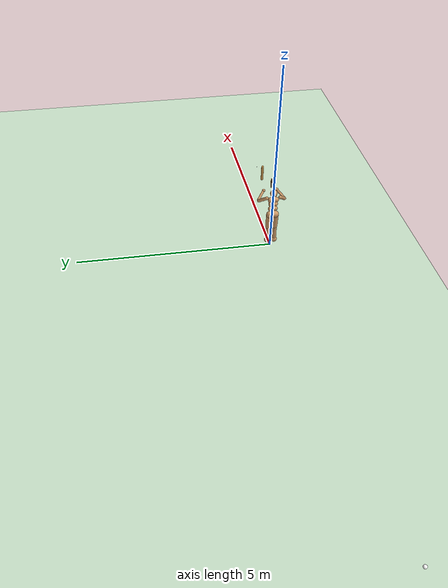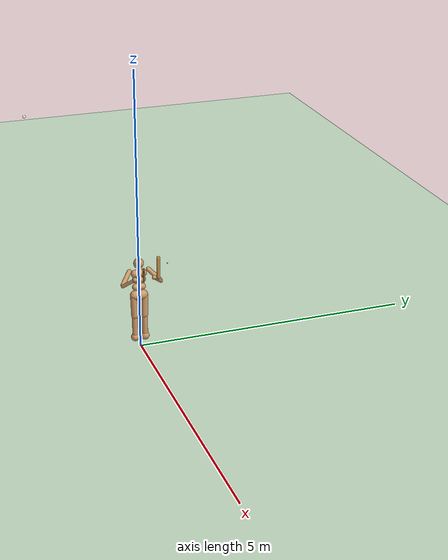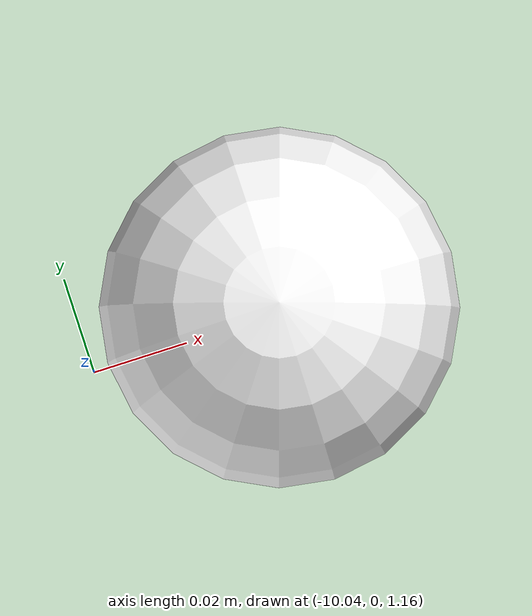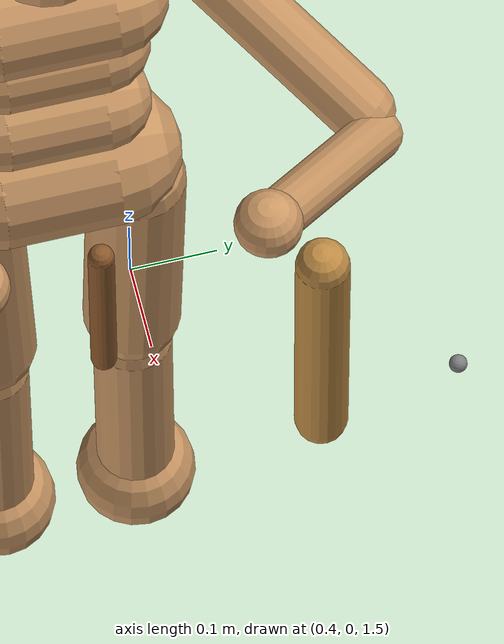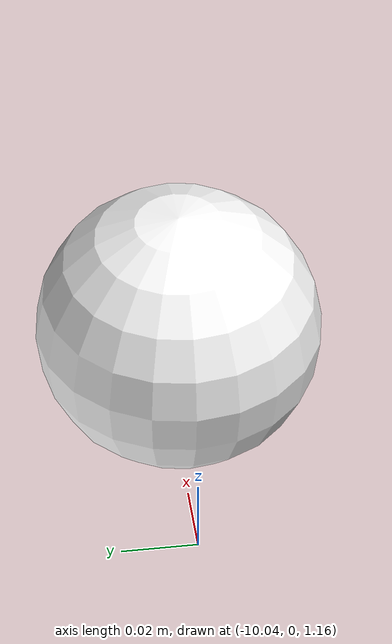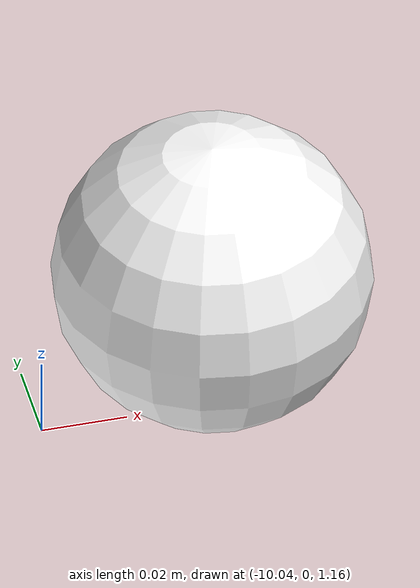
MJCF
<mujoco model="batting_humanoid">
    <compiler angle="degree" inertiafromgeom="true"/>
    <default>
        <joint armature="1" damping="1" limited="true"/>
        <geom conaffinity="1" condim="1" contype="1" margin="0.001" material="geom" rgba="0.8 0.6 .4 1"/>
        <motor ctrllimited="true" ctrlrange="-1.0 1.0"/>
    </default>
    <option integrator="RK4" iterations="50" solver="PGS" timestep="0.002">
        <!-- reduced timestep from 0.003 to 0.002 to prevent ball tunneling -->
    </option>
    <size nkey="5" nuser_geom="1"/>
    <visual>
        <map fogend="5" fogstart="3"/>
    </visual>
    <asset>
        <texture builtin="gradient" height="100" rgb1=".4 .5 .6" rgb2="0 0 0" type="skybox" width="100"/>
        <texture builtin="flat" height="1278" mark="cross" markrgb="1 1 1" name="texgeom" random="0.01" rgb1="0.8 0.6 0.4" rgb2="0.8 0.6 0.4" type="cube" width="127"/>
        <texture builtin="checker" height="100" name="texplane" rgb1="0 0 0" rgb2="0.8 0.8 0.8" type="2d" width="100"/>
        <material name="MatPlane" reflectance="0.5" shininess="1" specular="1" texrepeat="60 60" texture="texplane"/>
        <material name="geom" texture="texgeom" texuniform="true"/>
    </asset>
    <worldbody>
        <light cutoff="100" diffuse="1 1 1" dir="-0 0 -1.3" directional="true" exponent="1" pos="0 0 1.3" specular=".1 .1 .1"/>
        <geom condim="3" friction="1 .1 .1" material="MatPlane" name="floor" pos="0 0 0" rgba="0.8 0.9 0.8 1" size="20 20 0.125" type="plane"/>
        <body name="torso" pos="0 0 1.4">
            <camera name="track" mode="trackcom" pos="0 -4 0" xyaxes="1 0 0 0 0 1"/>
            <joint armature="0" damping="0" limited="false" name="root" pos="0 0 0" stiffness="0" type="free"/>
            <geom fromto="0 -.07 0 0 .07 0" name="torso1" size="0.07" type="capsule"/>
            <geom name="head" pos="0 0 .19" size=".09" type="sphere" user="258"/>
            <geom fromto="-.01 -.06 -.12 -.01 .06 -.12" name="uwaist" size="0.06" type="capsule"/>
            <body name="lwaist" pos="-.01 0 -0.260" quat="1.000 0 -0.002 0">
                <geom fromto="0 -.06 0 0 .06 0" name="lwaist" size="0.06" type="capsule"/>
                <joint armature="0.02" axis="0 0 1" damping="5" name="abdomen_z" pos="0 0 0.065" range="-45 45" stiffness="20" type="hinge"/>
                <joint armature="0.02" axis="0 1 0" damping="5" name="abdomen_y" pos="0 0 0.065" range="-75 30" stiffness="10" type="hinge"/>
                <body name="pelvis" pos="0 0 -0.165" quat="1.000 0 -0.002 0">
                    <joint armature="0.02" axis="1 0 0" damping="5" name="abdomen_x" pos="0 0 0.1" range="-35 35" stiffness="10" type="hinge"/>
                    <geom fromto="-.02 -.07 0 -.02 .07 0" name="butt" size="0.09" type="capsule"/>
                    <body name="right_thigh" pos="0 -0.1 -0.04">
                        <joint armature="0.01" axis="1 0 0" damping="5" name="right_hip_x" pos="0 0 0" range="-25 5" stiffness="10" type="hinge"/>
                        <joint armature="0.01" axis="0 0 1" damping="5" name="right_hip_z" pos="0 0 0" range="-60 35" stiffness="10" type="hinge"/>
                        <joint armature="0.0080" axis="0 1 0" damping="5" name="right_hip_y" pos="0 0 0" range="-110 20" stiffness="20" type="hinge"/>
                        <geom fromto="0 0 0 0 0.01 -.34" name="right_thigh1" size="0.06" type="capsule"/>
                        <body name="right_shin" pos="0 0.01 -0.403">
                            <joint armature="0.0060" axis="0 -1 0" name="right_knee" pos="0 0 .02" range="-160 -2" type="hinge"/>
                            <geom fromto="0 0 0 0 0 -.3" name="right_shin1" size="0.049" type="capsule"/>
                            <body name="right_foot" pos="0 0 -0.45">
                                <geom name="right_foot" pos="0 0 0.1" size="0.075" type="sphere" user="0"/>
                            </body>
                        </body>
                    </body>
                    <body name="left_thigh" pos="0 0.1 -0.04">
                        <joint armature="0.01" axis="-1 0 0" damping="5" name="left_hip_x" pos="0 0 0" range="-25 5" stiffness="10" type="hinge"/>
                        <joint armature="0.01" axis="0 0 -1" damping="5" name="left_hip_z" pos="0 0 0" range="-60 35" stiffness="10" type="hinge"/>
                        <joint armature="0.01" axis="0 1 0" damping="5" name="left_hip_y" pos="0 0 0" range="-110 20" stiffness="20" type="hinge"/>
                        <geom fromto="0 0 0 0 -0.01 -.34" name="left_thigh1" size="0.06" type="capsule"/>
                        <body name="left_shin" pos="0 -0.01 -0.403">
                            <joint armature="0.0060" axis="0 -1 0" name="left_knee" pos="0 0 .02" range="-160 -2" stiffness="1" type="hinge"/>
                            <geom fromto="0 0 0 0 0 -.3" name="left_shin1" size="0.049" type="capsule"/>
                            <body name="left_foot" pos="0 0 -0.45">
                                <geom name="left_foot" type="sphere" size="0.075" pos="0 0 0.1" user="0"/>
                            </body>
                        </body>
                    </body>
                </body>
            </body>
            <body name="right_upper_arm" pos="0 -0.17 0.06">
                <joint armature="0.0068" axis="2 1 1" name="right_shoulder1" pos="0 0 0" range="-85 60" stiffness="1" type="hinge"/>
                <joint armature="0.0051" axis="0 -1 1" name="right_shoulder2" pos="0 0 0" range="-85 60" stiffness="1" type="hinge"/>
                <geom fromto="0 0 0 .16 -.16 -.16" name="right_uarm1" size="0.04 0.16" type="capsule"/>
                <body name="right_lower_arm" pos=".18 -.18 -.18">
                    <joint armature="0.0028" axis="0 -1 1" name="right_elbow" pos="0 0 0" range="-90 50" stiffness="0" type="hinge"/>
                    <geom fromto="0.01 0.01 0.01 .17 .17 .17" name="right_larm" size="0.031" type="capsule"/>
                    <geom name="right_hand" pos=".18 .18 .18" size="0.04" type="sphere"/>
                    <camera pos="0 0 0"/>
                    <!-- Bat welded to right hand (no joint) -->
                    <geom name="bat_handle" type="capsule" size="0.015 0.12"
                          pos="0.30 0.30 0.30" axisangle="1 1 1 0"
                          mass="0.1" contype="2" conaffinity="2"
                          rgba="0.55 0.35 0.17 1" material="geom"/>
                    <geom name="bat_barrel" type="capsule" size="0.03 0.18"
                          pos="0.50 0.50 0.50" axisangle="1 1 1 0"
                          mass="0.7" contype="2" conaffinity="2"
                          rgba="0.75 0.55 0.27 1" material="geom"/>
                    <site name="bat_tip" pos="0.62 0.62 0.62" size="0.01"/>
                </body>
            </body>
            <body name="left_upper_arm" pos="0 0.17 0.06">
                <joint armature="0.0068" axis="2 -1 1" name="left_shoulder1" pos="0 0 0" range="-60 85" stiffness="1" type="hinge"/>
                <joint armature="0.0051" axis="0 1 1" name="left_shoulder2" pos="0 0 0" range="-60 85" stiffness="1" type="hinge"/>
                <geom fromto="0 0 0 .16 .16 -.16" name="left_uarm1" size="0.04 0.16" type="capsule"/>
                <body name="left_lower_arm" pos=".18 .18 -.18">
                    <joint armature="0.0028" axis="0 -1 -1" name="left_elbow" pos="0 0 0" range="-90 50" stiffness="0" type="hinge"/>
                    <geom fromto="0.01 -0.01 0.01 .17 -.17 .17" name="left_larm" size="0.031" type="capsule"/>
                    <geom name="left_hand" pos=".18 -.18 .18" size="0.04" type="sphere"/>
                </body>
            </body>
        </body>

        <!-- Baseball - free body in front of batter -->
        <body name="ball" pos="-10 0 1.2">
            <joint name="ball_free" type="free"/>
            <geom name="ball_geom" type="sphere" size="0.037" mass="0.145"
                  contype="2" conaffinity="2" condim="4"
                  solref="0.002 1" solimp="0.99 0.99 0.001"
                  rgba="1 1 1 1"/>
            <site name="ball_center" pos="0 0 0" size="0.01"/>
        </body>
    </worldbody>

    <contact>
        <pair geom1="bat_barrel" geom2="ball_geom" condim="4" solref="0.002 1" solimp="0.99 0.99 0.001"/>
        <pair geom1="bat_handle" geom2="ball_geom" condim="4" solref="0.002 1" solimp="0.99 0.99 0.001"/>
    </contact>

    <tendon>
        <fixed name="left_hipknee">
            <joint coef="-1" joint="left_hip_y"/>
            <joint coef="1" joint="left_knee"/>
        </fixed>
        <fixed name="right_hipknee">
            <joint coef="-1" joint="right_hip_y"/>
            <joint coef="1" joint="right_knee"/>
        </fixed>
    </tendon>

    <actuator>
        <motor gear="100" joint="abdomen_y" name="abdomen_y"/>
        <motor gear="100" joint="abdomen_z" name="abdomen_z"/>
        <motor gear="100" joint="abdomen_x" name="abdomen_x"/>
        <motor gear="100" joint="right_hip_x" name="right_hip_x"/>
        <motor gear="100" joint="right_hip_z" name="right_hip_z"/>
        <motor gear="300" joint="right_hip_y" name="right_hip_y"/>
        <motor gear="200" joint="right_knee" name="right_knee"/>
        <motor gear="100" joint="left_hip_x" name="left_hip_x"/>
        <motor gear="100" joint="left_hip_z" name="left_hip_z"/>
        <motor gear="300" joint="left_hip_y" name="left_hip_y"/>
        <motor gear="200" joint="left_knee" name="left_knee"/>
        <motor gear="25" joint="right_shoulder1" name="right_shoulder1"/>
        <motor gear="25" joint="right_shoulder2" name="right_shoulder2"/>
        <motor gear="25" joint="right_elbow" name="right_elbow"/>
        <motor gear="25" joint="left_shoulder1" name="left_shoulder1"/>
        <motor gear="25" joint="left_shoulder2" name="left_shoulder2"/>
        <motor gear="25" joint="left_elbow" name="left_elbow"/>
    </actuator>

    <sensor>
        <framepos objtype="site" objname="bat_tip" name="bat_tip_pos"/>
        <framelinvel objtype="site" objname="bat_tip" name="bat_tip_vel"/>
        <framepos objtype="site" objname="ball_center" name="ball_pos"/>
        <framelinvel objtype="site" objname="ball_center" name="ball_vel"/>
    </sensor>
</mujoco>
